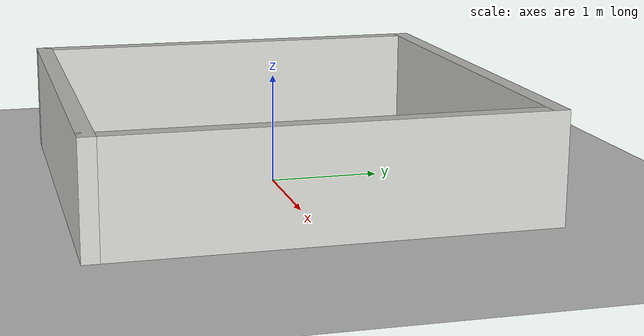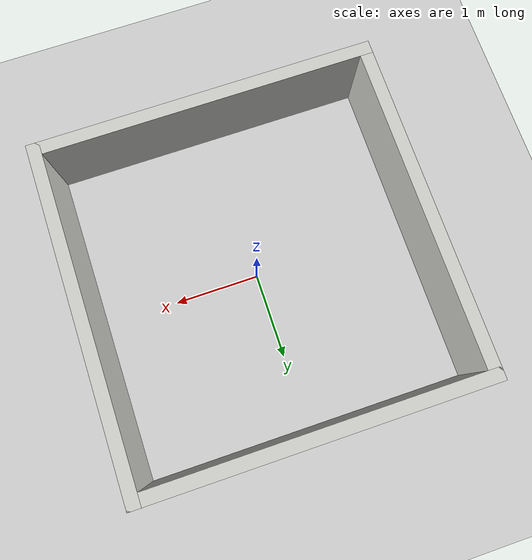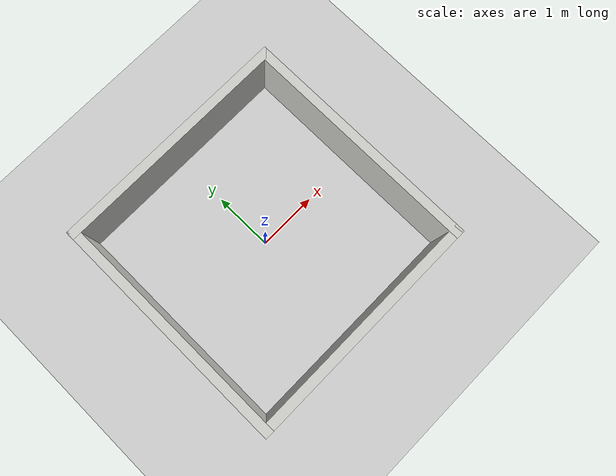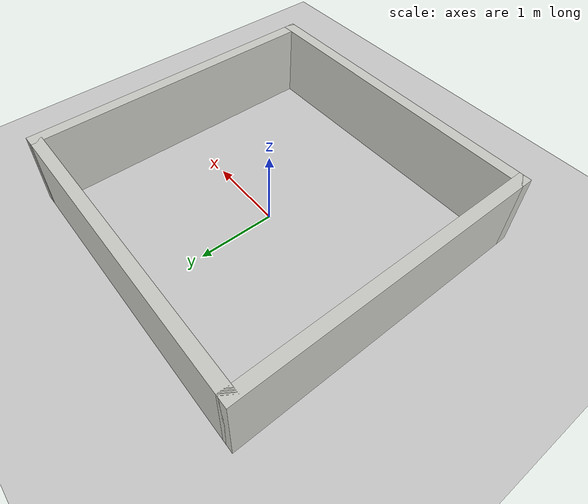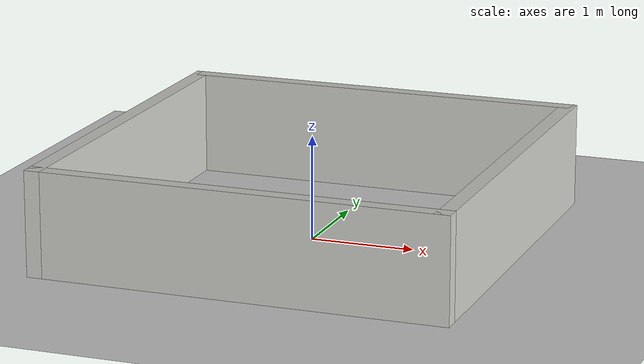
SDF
<sdf version='1.6'>
  <world name='default'>
    <light name='sun' type='directional'>
      <cast_shadows>1</cast_shadows>
      <pose frame=''>0 0 10 0 -0 0</pose>
      <diffuse>0.8 0.8 0.8 1</diffuse>
      <specular>0.2 0.2 0.2 1</specular>
      <attenuation>
        <range>1000</range>
        <constant>0.9</constant>
        <linear>0.01</linear>
        <quadratic>0.001</quadratic>
      </attenuation>
      <direction>-0.5 0.1 -0.9</direction>
    </light>
    <model name='ground_plane'>
      <static>1</static>
      <link name='link'>
        <collision name='collision'>
          <geometry>
            <plane>
              <normal>0 0 1</normal>
              <size>100 100</size>
            </plane>
          </geometry>
          <surface>
            <friction>
              <ode>
                <mu>100</mu>
                <mu2>50</mu2>
              </ode>
              <torsional>
                <ode/>
              </torsional>
            </friction>
            <contact>
              <ode/>
            </contact>
            <bounce/>
          </surface>
          <max_contacts>10</max_contacts>
        </collision>
        <visual name='visual'>
          <cast_shadows>0</cast_shadows>
          <geometry>
            <plane>
              <normal>0 0 1</normal>
              <size>100 100</size>
            </plane>
          </geometry>
          <material>
            <script>
              <uri>file://media/materials/scripts/gazebo.material</uri>
              <name>Gazebo/Grey</name>
            </script>
          </material>
        </visual>
        <self_collide>0</self_collide>
        <enable_wind>0</enable_wind>
        <kinematic>0</kinematic>
      </link>
    </model>
    <gravity>0 0 -9.8</gravity>
    <magnetic_field>6e-06 2.3e-05 -4.2e-05</magnetic_field>
    <atmosphere type='adiabatic'/>
    <physics name='default_physics' default='0' type='ode'>
      <max_step_size>0.001</max_step_size>
      <real_time_factor>1</real_time_factor>
      <real_time_update_rate>1000</real_time_update_rate>
    </physics>
    <scene>
      <ambient>0.4 0.4 0.4 1</ambient>
      <background>0.7 0.7 0.7 1</background>
      <shadows>1</shadows>
    </scene>
    <wind/>
    <spherical_coordinates>
      <surface_model>EARTH_WGS84</surface_model>
      <latitude_deg>0</latitude_deg>
      <longitude_deg>0</longitude_deg>
      <elevation>0</elevation>
      <heading_deg>0</heading_deg>
    </spherical_coordinates>
    <model name='Untitled'>
      <pose frame=''>0 0 0 0 -0 0</pose>
      <link name='Wall_0'>
        <collision name='Wall_0_Collision'>
          <geometry>
            <box>
              <size>4 0.15 1</size>
            </box>
          </geometry>
          <pose frame=''>0 0 0.5 0 -0 0</pose>
          <max_contacts>10</max_contacts>
          <surface>
            <contact>
              <ode/>
            </contact>
            <bounce/>
            <friction>
              <torsional>
                <ode/>
              </torsional>
              <ode/>
            </friction>
          </surface>
        </collision>
        <visual name='Wall_0_Visual'>
          <pose frame=''>0 0 0.5 0 -0 0</pose>
          <geometry>
            <box>
              <size>4 0.15 1</size>
            </box>
          </geometry>
          <material>
            <script>
              <uri>file://media/materials/scripts/gazebo.material</uri>
              <name>Gazebo/CeilingTiled</name>
            </script>
            <ambient>0.435294 0.796078 0.67451 1</ambient>
          </material>
          <meta>
            <layer>0</layer>
          </meta>
        </visual>
        <pose frame=''>-1.925 0 0 0 -0 1.5708</pose>
        <self_collide>0</self_collide>
        <enable_wind>0</enable_wind>
        <kinematic>0</kinematic>
      </link>
      <link name='Wall_1'>
        <collision name='Wall_1_Collision'>
          <geometry>
            <box>
              <size>4 0.15 1</size>
            </box>
          </geometry>
          <pose frame=''>0 0 0.5 0 -0 0</pose>
          <max_contacts>10</max_contacts>
          <surface>
            <contact>
              <ode/>
            </contact>
            <bounce/>
            <friction>
              <torsional>
                <ode/>
              </torsional>
              <ode/>
            </friction>
          </surface>
        </collision>
        <visual name='Wall_1_Visual'>
          <pose frame=''>0 0 0.5 0 -0 0</pose>
          <geometry>
            <box>
              <size>4 0.15 1</size>
            </box>
          </geometry>
          <material>
            <script>
              <uri>file://media/materials/scripts/gazebo.material</uri>
              <name>Gazebo/CeilingTiled</name>
            </script>
            <ambient>0.435294 0.796078 0.67451 1</ambient>
          </material>
          <meta>
            <layer>0</layer>
          </meta>
        </visual>
        <pose frame=''>0 1.925 0 0 -0 0</pose>
        <self_collide>0</self_collide>
        <enable_wind>0</enable_wind>
        <kinematic>0</kinematic>
      </link>
      <link name='Wall_2'>
        <collision name='Wall_2_Collision'>
          <geometry>
            <box>
              <size>4 0.15 1</size>
            </box>
          </geometry>
          <pose frame=''>0 0 0.5 0 -0 0</pose>
          <max_contacts>10</max_contacts>
          <surface>
            <contact>
              <ode/>
            </contact>
            <bounce/>
            <friction>
              <torsional>
                <ode/>
              </torsional>
              <ode/>
            </friction>
          </surface>
        </collision>
        <visual name='Wall_2_Visual'>
          <pose frame=''>0 0 0.5 0 -0 0</pose>
          <geometry>
            <box>
              <size>4 0.15 1</size>
            </box>
          </geometry>
          <material>
            <script>
              <uri>file://media/materials/scripts/gazebo.material</uri>
              <name>Gazebo/CeilingTiled</name>
            </script>
            <ambient>0.435294 0.796078 0.67451 1</ambient>
          </material>
          <meta>
            <layer>0</layer>
          </meta>
        </visual>
        <pose frame=''>1.925 0 0 0 -0 -1.5708</pose>
        <self_collide>0</self_collide>
        <enable_wind>0</enable_wind>
        <kinematic>0</kinematic>
      </link>
      <link name='Wall_3'>
        <collision name='Wall_3_Collision'>
          <geometry>
            <box>
              <size>4 0.15 1</size>
            </box>
          </geometry>
          <pose frame=''>0 0 0.5 0 -0 0</pose>
          <max_contacts>10</max_contacts>
          <surface>
            <contact>
              <ode/>
            </contact>
            <bounce/>
            <friction>
              <torsional>
                <ode/>
              </torsional>
              <ode/>
            </friction>
          </surface>
        </collision>
        <visual name='Wall_3_Visual'>
          <pose frame=''>0 0 0.5 0 -0 0</pose>
          <geometry>
            <box>
              <size>4 0.15 1</size>
            </box>
          </geometry>
          <material>
            <script>
              <uri>file://media/materials/scripts/gazebo.material</uri>
              <name>Gazebo/CeilingTiled</name>
            </script>
            <ambient>0.435294 0.796078 0.67451 1</ambient>
          </material>
          <meta>
            <layer>0</layer>
          </meta>
        </visual>
        <pose frame=''>0 -1.925 0 0 -0 3.14159</pose>
        <self_collide>0</self_collide>
        <enable_wind>0</enable_wind>
        <kinematic>0</kinematic>
      </link>
      <static>1</static>
    </model>

    <gui fullscreen='0'>
      <camera name='user_camera'>
        <pose frame=''>2.56281 -7.01883 9.52657 -0 0.819643 1.6922</pose>
        <view_controller>orbit</view_controller>
        <projection_type>perspective</projection_type>
      </camera>
    </gui>
  </world>
</sdf>
